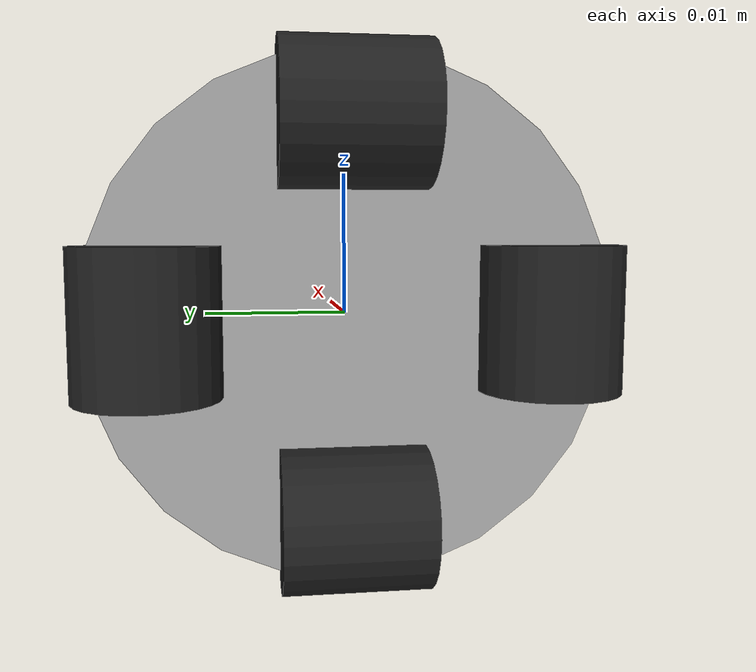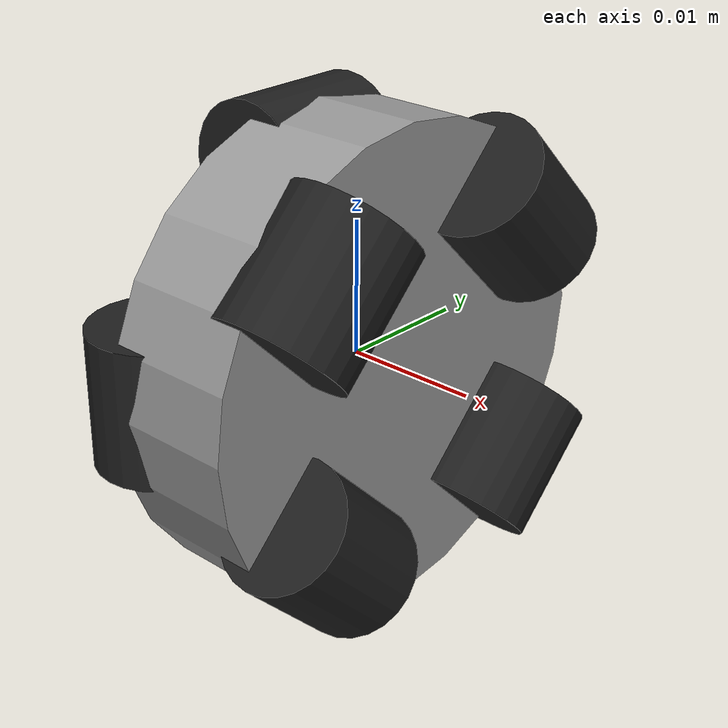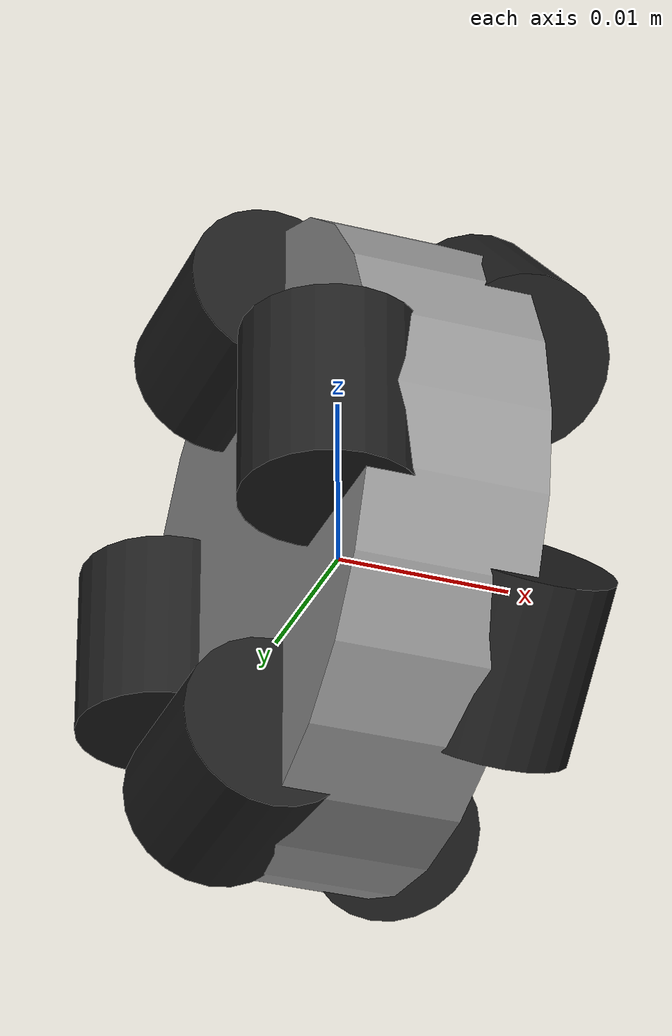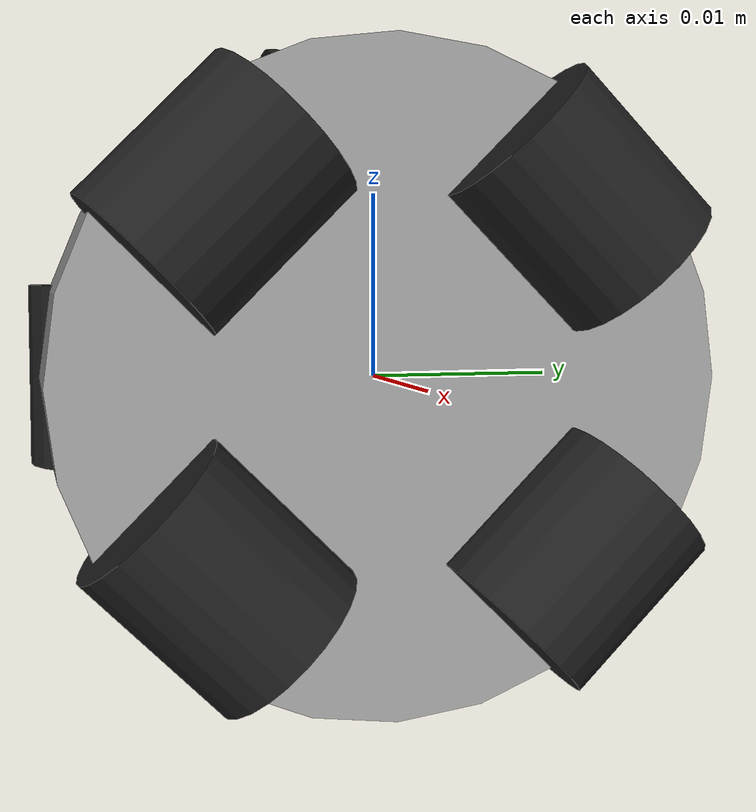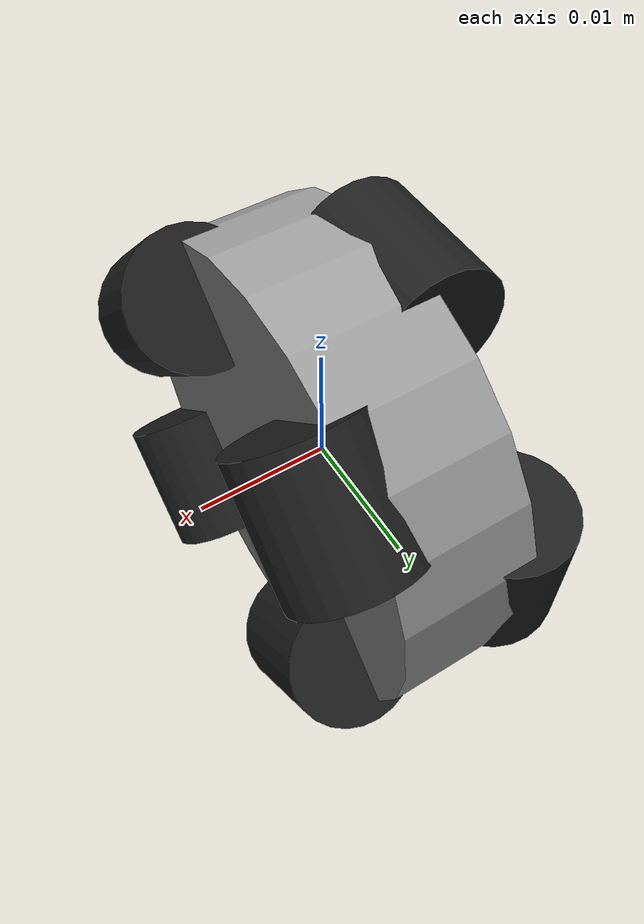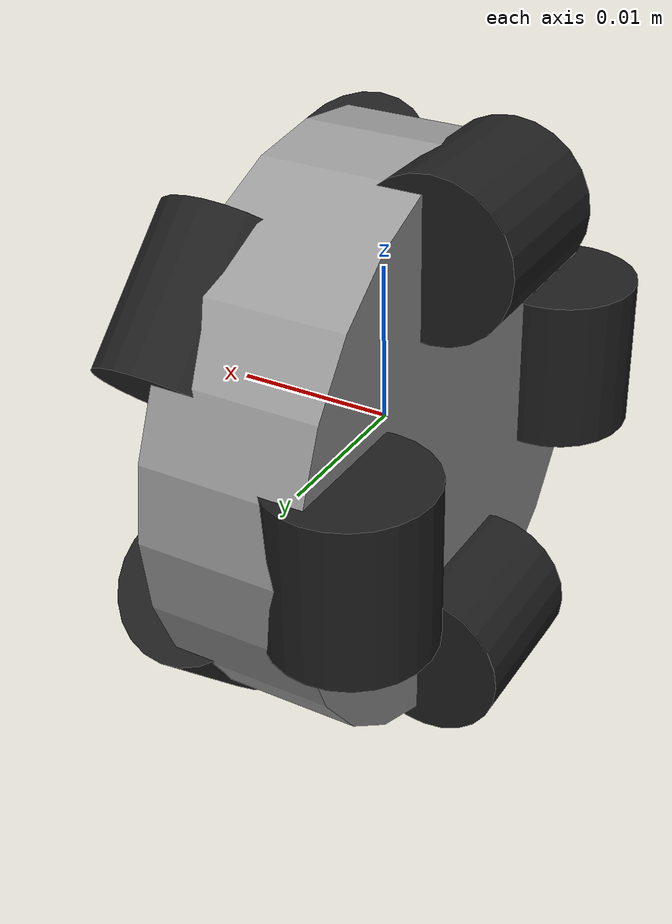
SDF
<?xml version="1.0" ?>
<!-- |    This document was autogenerated by xacro from /home/robostep/nav2-sample/src/OpenBase/openbase_gazebo_models/models/simple_omni_wheel/model.sdf.xacro | -->
<!-- |    EDITING THIS FILE BY HAND IS NOT RECOMMENDED                                 | -->
<sdf version="1.7">
  <model name="simple_omni_wheel_model">
    <link name="omni_wheel_rim_link">
      <inertial>
        <pose>0 0 0 0 1.5707963267948966 0</pose>
        <mass>0.00835758</mass>
        <inertia>
          <ixx>6.63684e-07</ixx>
          <ixy>0</ixy>
          <ixz>0</ixz>
          <iyy>6.63684e-07</iyy>
          <iyz>0</iyz>
          <izz>9.40333e-07</izz>
        </inertia>
      </inertial>
      <visual name="visual">
        <pose>0 0 0 0 1.5707963267948966 0</pose>
        <geometry>
          <cylinder>
            <radius>0.018</radius>
            <length>0.01</length>
          </cylinder>
        </geometry>
        <material>
          <script>
            <uri>file://media/materials/scripts/gazebo.material</uri>
            <name>Gazebo/Grey</name>
          </script>
        </material>
      </visual>
      <collision name="collision">
        <pose>0 0 0 0 1.5707963267948966 0</pose>
        <geometry>
          <cylinder>
            <radius>0.018</radius>
            <length>0.01</length>
          </cylinder>
        </geometry>
        <surface>
          <friction>
            <ode>
              <mu>1</mu>
              <mu2>1</mu2>
              <fdir1>0 0 0</fdir1>
              <slip1>0</slip1>
              <slip2>0</slip2>
            </ode>
          </friction>
        </surface>
      </collision>
    </link>
    <link name="omni_wheel_roller_e_link">
      <pose>-0.0055 0.01355 0 0 -0 0</pose>
      <inertial>
        <mass>0.00313845</mass>
        <pose>0 0 0 0 0 0</pose>
        <inertia>
          <ixx>2.53776e-07</ixx>
          <ixy>0</ixy>
          <ixz>0</ixz>
          <iyy>2.53776e-07</iyy>
          <iyz>0</iyz>
          <izz>1.47666e-07</izz>
        </inertia>
      </inertial>
      <visual name="visual">
        <pose>0 0 0 0 0 0</pose>
        <geometry>
          <cylinder>
            <radius>0.0049</radius>
            <length>0.01</length>
          </cylinder>
        </geometry>
        <material>
          <script>
            <uri>file://media/materials/scripts/gazebo.material</uri>
            <name>Gazebo/Black</name>
          </script>
        </material>
      </visual>
      <collision name="collision">
        <pose>0 0 0 0 0 0</pose>
        <geometry>
          <cylinder>
            <radius>0.0049</radius>
            <length>0.01</length>
          </cylinder>
        </geometry>
        <surface>
          <friction>
            <ode>
              <mu>1</mu>
              <mu2>1</mu2>
              <fdir1>0 0 0</fdir1>
              <slip1>0</slip1>
              <slip2>0</slip2>
            </ode>
          </friction>
        </surface>
      </collision>
    </link>
    <link name="omni_wheel_roller_n_link">
      <pose>-0.0055 0 0.01355 1.5707963267948966 -0 0</pose>
      <inertial>
        <mass>0.00313845</mass>
        <pose>0 0 0 0 0 0</pose>
        <inertia>
          <ixx>2.53776e-07</ixx>
          <ixy>0</ixy>
          <ixz>0</ixz>
          <iyy>2.53776e-07</iyy>
          <iyz>0</iyz>
          <izz>1.47666e-07</izz>
        </inertia>
      </inertial>
      <visual name="visual">
        <pose>0 0 0 0 0 0</pose>
        <geometry>
          <cylinder>
            <radius>0.0049</radius>
            <length>0.01</length>
          </cylinder>
        </geometry>
        <material>
          <script>
            <uri>file://media/materials/scripts/gazebo.material</uri>
            <name>Gazebo/Black</name>
          </script>
        </material>
      </visual>
      <collision name="collision">
        <pose>0 0 0 0 0 0</pose>
        <geometry>
          <cylinder>
            <radius>0.0049</radius>
            <length>0.01</length>
          </cylinder>
        </geometry>
        <surface>
          <friction>
            <ode>
              <mu>1</mu>
              <mu2>1</mu2>
              <fdir1>0 0 0</fdir1>
              <slip1>0</slip1>
              <slip2>0</slip2>
            </ode>
          </friction>
        </surface>
      </collision>
    </link>
    <link name="omni_wheel_roller_w_link">
      <pose>-0.0055 -0.01355 0 -3.141592653589793 0 0</pose>
      <inertial>
        <mass>0.00313845</mass>
        <pose>0 0 0 0 0 0</pose>
        <inertia>
          <ixx>2.53776e-07</ixx>
          <ixy>0</ixy>
          <ixz>0</ixz>
          <iyy>2.53776e-07</iyy>
          <iyz>0</iyz>
          <izz>1.47666e-07</izz>
        </inertia>
      </inertial>
      <visual name="visual">
        <pose>0 0 0 0 0 0</pose>
        <geometry>
          <cylinder>
            <radius>0.0049</radius>
            <length>0.01</length>
          </cylinder>
        </geometry>
        <material>
          <script>
            <uri>file://media/materials/scripts/gazebo.material</uri>
            <name>Gazebo/Black</name>
          </script>
        </material>
      </visual>
      <collision name="collision">
        <pose>0 0 0 0 0 0</pose>
        <geometry>
          <cylinder>
            <radius>0.0049</radius>
            <length>0.01</length>
          </cylinder>
        </geometry>
        <surface>
          <friction>
            <ode>
              <mu>1</mu>
              <mu2>1</mu2>
              <fdir1>0 0 0</fdir1>
              <slip1>0</slip1>
              <slip2>0</slip2>
            </ode>
          </friction>
        </surface>
      </collision>
    </link>
    <link name="omni_wheel_roller_s_link">
      <pose>-0.0055 0 -0.01355 -1.5707963267948966 0 0</pose>
      <inertial>
        <mass>0.00313845</mass>
        <pose>0 0 0 0 0 0</pose>
        <inertia>
          <ixx>2.53776e-07</ixx>
          <ixy>0</ixy>
          <ixz>0</ixz>
          <iyy>2.53776e-07</iyy>
          <iyz>0</iyz>
          <izz>1.47666e-07</izz>
        </inertia>
      </inertial>
      <visual name="visual">
        <pose>0 0 0 0 0 0</pose>
        <geometry>
          <cylinder>
            <radius>0.0049</radius>
            <length>0.01</length>
          </cylinder>
        </geometry>
        <material>
          <script>
            <uri>file://media/materials/scripts/gazebo.material</uri>
            <name>Gazebo/Black</name>
          </script>
        </material>
      </visual>
      <collision name="collision">
        <pose>0 0 0 0 0 0</pose>
        <geometry>
          <cylinder>
            <radius>0.0049</radius>
            <length>0.01</length>
          </cylinder>
        </geometry>
        <surface>
          <friction>
            <ode>
              <mu>1</mu>
              <mu2>1</mu2>
              <fdir1>0 0 0</fdir1>
              <slip1>0</slip1>
              <slip2>0</slip2>
            </ode>
          </friction>
        </surface>
      </collision>
    </link>
    <link name="omni_wheel_roller_ne_link">
      <pose>0.0055 0.009581 0.009581 0.7853981633974483 -0 0</pose>
      <inertial>
        <mass>0.00313845</mass>
        <pose>0 0 0 0 0 0</pose>
        <inertia>
          <ixx>2.53776e-07</ixx>
          <ixy>0</ixy>
          <ixz>0</ixz>
          <iyy>2.53776e-07</iyy>
          <iyz>0</iyz>
          <izz>1.47666e-07</izz>
        </inertia>
      </inertial>
      <visual name="visual">
        <pose>0 0 0 0 0 0</pose>
        <geometry>
          <cylinder>
            <radius>0.0049</radius>
            <length>0.01</length>
          </cylinder>
        </geometry>
        <material>
          <script>
            <uri>file://media/materials/scripts/gazebo.material</uri>
            <name>Gazebo/Black</name>
          </script>
        </material>
      </visual>
      <collision name="collision">
        <pose>0 0 0 0 0 0</pose>
        <geometry>
          <cylinder>
            <radius>0.0049</radius>
            <length>0.01</length>
          </cylinder>
        </geometry>
        <surface>
          <friction>
            <ode>
              <mu>1</mu>
              <mu2>1</mu2>
              <fdir1>0 0 0</fdir1>
              <slip1>0</slip1>
              <slip2>0</slip2>
            </ode>
          </friction>
        </surface>
      </collision>
    </link>
    <link name="omni_wheel_roller_nw_link">
      <pose>0.0055 -0.009581 0.009581 2.356194490192345 -0 0</pose>
      <inertial>
        <mass>0.00313845</mass>
        <pose>0 0 0 0 0 0</pose>
        <inertia>
          <ixx>2.53776e-07</ixx>
          <ixy>0</ixy>
          <ixz>0</ixz>
          <iyy>2.53776e-07</iyy>
          <iyz>0</iyz>
          <izz>1.47666e-07</izz>
        </inertia>
      </inertial>
      <visual name="visual">
        <pose>0 0 0 0 0 0</pose>
        <geometry>
          <cylinder>
            <radius>0.0049</radius>
            <length>0.01</length>
          </cylinder>
        </geometry>
        <material>
          <script>
            <uri>file://media/materials/scripts/gazebo.material</uri>
            <name>Gazebo/Black</name>
          </script>
        </material>
      </visual>
      <collision name="collision">
        <pose>0 0 0 0 0 0</pose>
        <geometry>
          <cylinder>
            <radius>0.0049</radius>
            <length>0.01</length>
          </cylinder>
        </geometry>
        <surface>
          <friction>
            <ode>
              <mu>1</mu>
              <mu2>1</mu2>
              <fdir1>0 0 0</fdir1>
              <slip1>0</slip1>
              <slip2>0</slip2>
            </ode>
          </friction>
        </surface>
      </collision>
    </link>
    <link name="omni_wheel_roller_sw_link">
      <pose>0.0055 -0.009581 -0.009581 -2.356194490192345 0 0</pose>
      <inertial>
        <mass>0.00313845</mass>
        <pose>0 0 0 0 0 0</pose>
        <inertia>
          <ixx>2.53776e-07</ixx>
          <ixy>0</ixy>
          <ixz>0</ixz>
          <iyy>2.53776e-07</iyy>
          <iyz>0</iyz>
          <izz>1.47666e-07</izz>
        </inertia>
      </inertial>
      <visual name="visual">
        <pose>0 0 0 0 0 0</pose>
        <geometry>
          <cylinder>
            <radius>0.0049</radius>
            <length>0.01</length>
          </cylinder>
        </geometry>
        <material>
          <script>
            <uri>file://media/materials/scripts/gazebo.material</uri>
            <name>Gazebo/Black</name>
          </script>
        </material>
      </visual>
      <collision name="collision">
        <pose>0 0 0 0 0 0</pose>
        <geometry>
          <cylinder>
            <radius>0.0049</radius>
            <length>0.01</length>
          </cylinder>
        </geometry>
        <surface>
          <friction>
            <ode>
              <mu>1</mu>
              <mu2>1</mu2>
              <fdir1>0 0 0</fdir1>
              <slip1>0</slip1>
              <slip2>0</slip2>
            </ode>
          </friction>
        </surface>
      </collision>
    </link>
    <link name="omni_wheel_roller_se_link">
      <pose>0.0055 0.009581 -0.009581 -0.7853981633974483 0 0</pose>
      <inertial>
        <mass>0.00313845</mass>
        <pose>0 0 0 0 0 0</pose>
        <inertia>
          <ixx>2.53776e-07</ixx>
          <ixy>0</ixy>
          <ixz>0</ixz>
          <iyy>2.53776e-07</iyy>
          <iyz>0</iyz>
          <izz>1.47666e-07</izz>
        </inertia>
      </inertial>
      <visual name="visual">
        <pose>0 0 0 0 0 0</pose>
        <geometry>
          <cylinder>
            <radius>0.0049</radius>
            <length>0.01</length>
          </cylinder>
        </geometry>
        <material>
          <script>
            <uri>file://media/materials/scripts/gazebo.material</uri>
            <name>Gazebo/Black</name>
          </script>
        </material>
      </visual>
      <collision name="collision">
        <pose>0 0 0 0 0 0</pose>
        <geometry>
          <cylinder>
            <radius>0.0049</radius>
            <length>0.01</length>
          </cylinder>
        </geometry>
        <surface>
          <friction>
            <ode>
              <mu>1</mu>
              <mu2>1</mu2>
              <fdir1>0 0 0</fdir1>
              <slip1>0</slip1>
              <slip2>0</slip2>
            </ode>
          </friction>
        </surface>
      </collision>
    </link>
    <joint name="omni_wheel_s_joint" type="revolute">
      <parent>omni_wheel_rim_link</parent>
      <child>omni_wheel_roller_s_link</child>
      <pose>0 0 0 0 0 1.5707963267948966</pose>
      <axis>
        <xyz>0 0 1</xyz>
        <dynamics>
          <spring_reference>0</spring_reference>
          <spring_stiffness>0</spring_stiffness>
          <damping>0</damping>
          <friction>0.001</friction>
        </dynamics>
      </axis>
    </joint>
    <joint name="omni_wheel_se_joint" type="revolute">
      <parent>omni_wheel_rim_link</parent>
      <child>omni_wheel_roller_se_link</child>
      <pose>0 0 0 0 0 1.5707963267948966</pose>
      <axis>
        <xyz>0 0 1</xyz>
        <dynamics>
          <spring_reference>0</spring_reference>
          <spring_stiffness>0</spring_stiffness>
          <damping>0</damping>
          <friction>0.001</friction>
        </dynamics>
      </axis>
    </joint>
    <joint name="omni_wheel_e_joint" type="revolute">
      <parent>omni_wheel_rim_link</parent>
      <child>omni_wheel_roller_e_link</child>
      <pose>0 0 0 0 0 1.5707963267948966</pose>
      <axis>
        <xyz>0 0 1</xyz>
        <dynamics>
          <spring_reference>0</spring_reference>
          <spring_stiffness>0</spring_stiffness>
          <damping>0</damping>
          <friction>0.001</friction>
        </dynamics>
      </axis>
    </joint>
    <joint name="omni_wheel_ne_joint" type="revolute">
      <parent>omni_wheel_rim_link</parent>
      <child>omni_wheel_roller_ne_link</child>
      <pose>0 0 0 0 0 1.5707963267948966</pose>
      <axis>
        <xyz>0 0 1</xyz>
        <dynamics>
          <spring_reference>0</spring_reference>
          <spring_stiffness>0</spring_stiffness>
          <damping>0</damping>
          <friction>0.001</friction>
        </dynamics>
      </axis>
    </joint>
    <joint name="omni_wheel_n_joint" type="revolute">
      <parent>omni_wheel_rim_link</parent>
      <child>omni_wheel_roller_n_link</child>
      <pose>0 0 0 0 0 1.5707963267948966</pose>
      <axis>
        <xyz>0 0 1</xyz>
        <dynamics>
          <spring_reference>0</spring_reference>
          <spring_stiffness>0</spring_stiffness>
          <damping>0</damping>
          <friction>0.001</friction>
        </dynamics>
      </axis>
    </joint>
    <joint name="omni_wheel_nw_joint" type="revolute">
      <parent>omni_wheel_rim_link</parent>
      <child>omni_wheel_roller_nw_link</child>
      <pose>0 0 0 0 0 1.5707963267948966</pose>
      <axis>
        <xyz>0 0 1</xyz>
        <dynamics>
          <spring_reference>0</spring_reference>
          <spring_stiffness>0</spring_stiffness>
          <damping>0</damping>
          <friction>0.001</friction>
        </dynamics>
      </axis>
    </joint>
    <joint name="omni_wheel_w_joint" type="revolute">
      <parent>omni_wheel_rim_link</parent>
      <child>omni_wheel_roller_w_link</child>
      <pose>0 0 0 0 0 1.5707963267948966</pose>
      <axis>
        <xyz>0 0 1</xyz>
        <dynamics>
          <spring_reference>0</spring_reference>
          <spring_stiffness>0</spring_stiffness>
          <damping>0</damping>
          <friction>0.001</friction>
        </dynamics>
      </axis>
    </joint>
    <joint name="omni_wheel_sw_joint" type="revolute">
      <parent>omni_wheel_rim_link</parent>
      <child>omni_wheel_roller_sw_link</child>
      <pose>0 0 0 0 0 1.5707963267948966</pose>
      <axis>
        <xyz>0 0 1</xyz>
        <dynamics>
          <spring_reference>0</spring_reference>
          <spring_stiffness>0</spring_stiffness>
          <damping>0</damping>
          <friction>0.001</friction>
        </dynamics>
      </axis>
    </joint>
  </model>
</sdf>
